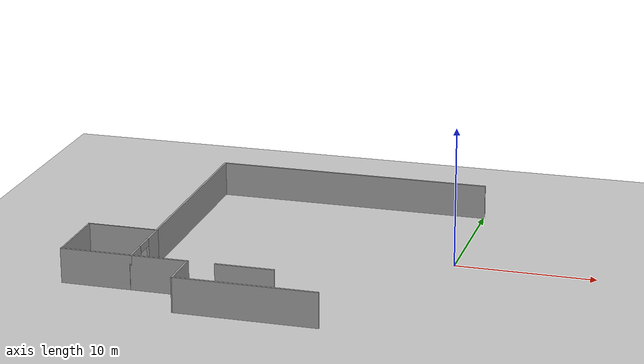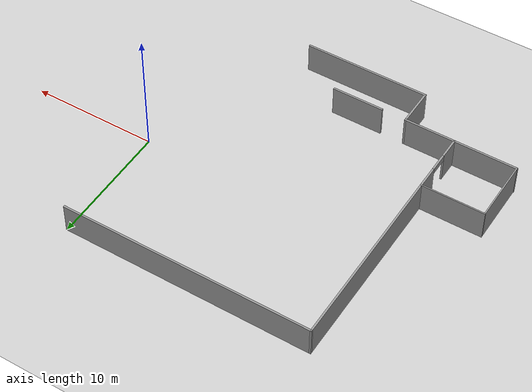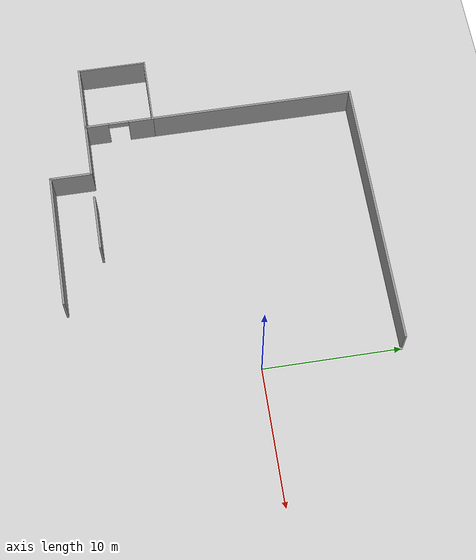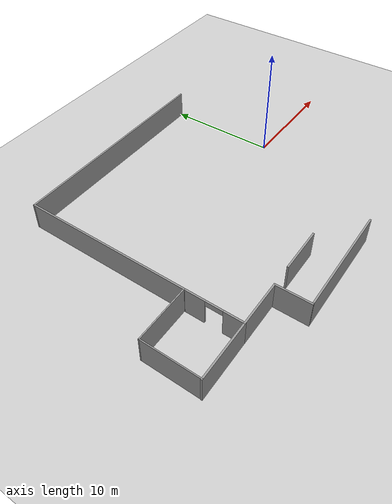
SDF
<sdf version="1.7">
 <world name="me5413_obstacle_world">
  <model name="ground_plane">
   <static>1</static>
   <link name="link">
    <collision name="collision">
     <geometry><plane><normal>0 0 1</normal><size>100 100</size></plane></geometry>
     <surface>
      <contact><collide_bitmask>65535</collide_bitmask></contact>
      <friction><ode><mu>100</mu><mu2>50</mu2></ode></friction>
     </surface>
    </collision>
    <visual name="visual">
     <cast_shadows>0</cast_shadows>
     <geometry><plane><normal>0 0 1</normal><size>100 100</size></plane></geometry>
     <material>
      <script><uri>file://media/materials/scripts/gazebo.material</uri><name>Gazebo/Grey</name></script>
     </material>
    </visual>
   </link>
  </model>
  <model name="smart_house_3_0">
   <link name="Wall_11">
    <pose>-20.0155 -3.51553 0 0 -0 3.14159</pose>
    <inertial>
     <inertia><ixx>1</ixx><ixy>0</ixy><ixz>0</ixz><iyy>1</iyy><iyz>0</iyz><izz>1</izz></inertia>
     <mass>1</mass>
    </inertial>
    <visual name="Wall_11_Visual">
     <pose>0 0 1.25 0 -0 0</pose>
     <geometry><box><size>5.1 0.1 2.5</size></box></geometry>
     <material>
      <script><uri>file://media/materials/scripts/gazebo.material</uri><name>Gazebo/Grey</name></script>
      <ambient>1 1 1 1</ambient>
      <shader type="pixel"/>
     </material>
     <meta><layer>0</layer></meta>
    </visual>
    <collision name="Wall_11_Collision">
     <pose>0 0 1.25 0 -0 0</pose>
     <geometry><box><size>5.1 0.1 2.5</size></box></geometry>
     <surface>
      <friction>
       <ode><mu>1</mu><mu2>1</mu2><fdir1>0 0 0</fdir1><slip1>0</slip1><slip2>0</slip2></ode>
       <torsional>
        <coefficient>1</coefficient>
        <patch_radius>0</patch_radius>
        <surface_radius>0</surface_radius>
        <use_patch_radius>1</use_patch_radius>
        <ode><slip>0</slip></ode>
       </torsional>
      </friction>
      <bounce><restitution_coefficient>0</restitution_coefficient><threshold>1e+06</threshold></bounce>
      <contact>
       <collide_without_contact>0</collide_without_contact>
       <collide_without_contact_bitmask>1</collide_without_contact_bitmask>
       <collide_bitmask>1</collide_bitmask>
       <ode>
        <soft_cfm>0</soft_cfm>
        <soft_erp>0.2</soft_erp>
        <kp>1e+13</kp>
        <kd>1</kd>
        <max_vel>0.01</max_vel>
        <min_depth>0</min_depth>
       </ode>
       <bullet>
        <split_impulse>1</split_impulse>
        <split_impulse_penetration_threshold>-0.01</split_impulse_penetration_threshold>
        <soft_cfm>0</soft_cfm>
        <soft_erp>0.2</soft_erp>
        <kp>1e+13</kp>
        <kd>1</kd>
       </bullet>
      </contact>
     </surface>
    </collision>
   </link>
   <link name="Wall_12">
    <pose>-22.5155 -6.01553 0 0 0 -1.5708</pose>
    <inertial>
     <inertia><ixx>1</ixx><ixy>0</ixy><ixz>0</ixz><iyy>1</iyy><iyz>0</iyz><izz>1</izz></inertia>
     <mass>1</mass>
    </inertial>
    <visual name="Wall_12_Visual">
     <pose>0 0 1.25 0 -0 0</pose>
     <geometry><box><size>5.1 0.1 2.5</size></box></geometry>
     <material>
      <script><uri>file://media/materials/scripts/gazebo.material</uri><name>Gazebo/Grey</name></script>
      <ambient>1 1 1 1</ambient>
      <shader type="pixel"/>
     </material>
     <meta><layer>0</layer></meta>
    </visual>
    <collision name="Wall_12_Collision">
     <pose>0 0 1.25 0 -0 0</pose>
     <geometry><box><size>5.1 0.1 2.5</size></box></geometry>
     <surface>
      <friction>
       <ode><mu>1</mu><mu2>1</mu2><fdir1>0 0 0</fdir1><slip1>0</slip1><slip2>0</slip2></ode>
       <torsional>
        <coefficient>1</coefficient>
        <patch_radius>0</patch_radius>
        <surface_radius>0</surface_radius>
        <use_patch_radius>1</use_patch_radius>
        <ode><slip>0</slip></ode>
       </torsional>
      </friction>
      <bounce><restitution_coefficient>0</restitution_coefficient><threshold>1e+06</threshold></bounce>
      <contact>
       <collide_without_contact>0</collide_without_contact>
       <collide_without_contact_bitmask>1</collide_without_contact_bitmask>
       <collide_bitmask>1</collide_bitmask>
       <ode>
        <soft_cfm>0</soft_cfm>
        <soft_erp>0.2</soft_erp>
        <kp>1e+13</kp>
        <kd>1</kd>
        <max_vel>0.01</max_vel>
        <min_depth>0</min_depth>
       </ode>
       <bullet>
        <split_impulse>1</split_impulse>
        <split_impulse_penetration_threshold>-0.01</split_impulse_penetration_threshold>
        <soft_cfm>0</soft_cfm>
        <soft_erp>0.2</soft_erp>
        <kp>1e+13</kp>
        <kd>1</kd>
       </bullet>
      </contact>
     </surface>
    </collision>
   </link>
   <link name="Wall_15">
    <pose>-7.51553 11.4845 0 0 -0 3.14159</pose>
    <inertial>
     <inertia><ixx>1</ixx><ixy>0</ixy><ixz>0</ixz><iyy>1</iyy><iyz>0</iyz><izz>1</izz></inertia>
     <mass>1</mass>
    </inertial>
    <visual name="Wall_15_Visual">
     <pose>0 0 1.25 0 -0 0</pose>
     <geometry><box><size>20.15 0.15 2.5</size></box></geometry>
     <material>
      <script><uri>file://media/materials/scripts/gazebo.material</uri><name>Gazebo/Grey</name></script>
      <ambient>1 1 1 1</ambient>
      <shader type="pixel"/>
     </material>
     <meta><layer>0</layer></meta>
    </visual>
    <collision name="Wall_15_Collision">
     <pose>0 0 1.25 0 -0 0</pose>
     <geometry><box><size>20.15 0.15 2.5</size></box></geometry>
     <surface>
      <friction>
       <ode><mu>1</mu><mu2>1</mu2><fdir1>0 0 0</fdir1><slip1>0</slip1><slip2>0</slip2></ode>
       <torsional>
        <coefficient>1</coefficient>
        <patch_radius>0</patch_radius>
        <surface_radius>0</surface_radius>
        <use_patch_radius>1</use_patch_radius>
        <ode><slip>0</slip></ode>
       </torsional>
      </friction>
      <bounce><restitution_coefficient>0</restitution_coefficient><threshold>1e+06</threshold></bounce>
      <contact>
       <collide_without_contact>0</collide_without_contact>
       <collide_without_contact_bitmask>1</collide_without_contact_bitmask>
       <collide_bitmask>1</collide_bitmask>
       <ode>
        <soft_cfm>0</soft_cfm>
        <soft_erp>0.2</soft_erp>
        <kp>1e+13</kp>
        <kd>1</kd>
        <max_vel>0.01</max_vel>
        <min_depth>0</min_depth>
       </ode>
       <bullet>
        <split_impulse>1</split_impulse>
        <split_impulse_penetration_threshold>-0.01</split_impulse_penetration_threshold>
        <soft_cfm>0</soft_cfm>
        <soft_erp>0.2</soft_erp>
        <kp>1e+13</kp>
        <kd>1</kd>
       </bullet>
      </contact>
     </surface>
    </collision>
   </link>
   <link name="Wall_16">
    <pose>-17.5155 3.98447 0 0 0 -1.5708</pose>
    <inertial>
     <inertia><ixx>1</ixx><ixy>0</ixy><ixz>0</ixz><iyy>1</iyy><iyz>0</iyz><izz>1</izz></inertia>
     <mass>1</mass>
    </inertial>
    <visual name="Wall_16_Visual">
     <pose>0 0 1.25 0 -0 0</pose>
     <geometry><box><size>15.1503 0.15 2.5</size></box></geometry>
     <material>
      <script><uri>file://media/materials/scripts/gazebo.material</uri><name>Gazebo/Grey</name></script>
      <ambient>1 1 1 1</ambient>
      <shader type="pixel"/>
     </material>
     <meta><layer>0</layer></meta>
    </visual>
    <collision name="Wall_16_Collision">
     <pose>0 0 1.25 0 -0 0</pose>
     <geometry><box><size>15.1503 0.15 2.5</size></box></geometry>
     <surface>
      <friction>
       <ode><mu>1</mu><mu2>1</mu2><fdir1>0 0 0</fdir1><slip1>0</slip1><slip2>0</slip2></ode>
       <torsional>
        <coefficient>1</coefficient>
        <patch_radius>0</patch_radius>
        <surface_radius>0</surface_radius>
        <use_patch_radius>1</use_patch_radius>
        <ode><slip>0</slip></ode>
       </torsional>
      </friction>
      <bounce><restitution_coefficient>0</restitution_coefficient><threshold>1e+06</threshold></bounce>
      <contact>
       <collide_without_contact>0</collide_without_contact>
       <collide_without_contact_bitmask>1</collide_without_contact_bitmask>
       <collide_bitmask>1</collide_bitmask>
       <ode>
        <soft_cfm>0</soft_cfm>
        <soft_erp>0.2</soft_erp>
        <kp>1e+13</kp>
        <kd>1</kd>
        <max_vel>0.01</max_vel>
        <min_depth>0</min_depth>
       </ode>
       <bullet>
        <split_impulse>1</split_impulse>
        <split_impulse_penetration_threshold>-0.01</split_impulse_penetration_threshold>
        <soft_cfm>0</soft_cfm>
        <soft_erp>0.2</soft_erp>
        <kp>1e+13</kp>
        <kd>1</kd>
       </bullet>
      </contact>
     </surface>
    </collision>
   </link>
   <link name="Wall_24">
    <pose>-17.5155 -6.01553 0 0 0 -1.5708</pose>
    <inertial>
     <inertia><ixx>1</ixx><ixy>0</ixy><ixz>0</ixz><iyy>1</iyy><iyz>0</iyz><izz>1</izz></inertia>
     <mass>1</mass>
    </inertial>
    <visual name="Wall_24_Visual_0">
     <pose>-1.63657 0 1.25 0 -0 0</pose>
     <geometry><box><size>1.87687 0.15 2.5</size></box></geometry>
     <material>
      <script><uri>file://media/materials/scripts/gazebo.material</uri><name>Gazebo/Grey</name></script>
      <ambient>1 1 1 1</ambient>
      <shader type="pixel"/>
     </material>
     <meta><layer>0</layer></meta>
    </visual>
    <visual name="Wall_24_Visual_1">
     <pose>1.68843 0 1.25 0 -0 0</pose>
     <geometry><box><size>1.77313 0.15 2.5</size></box></geometry>
     <material>
      <script><uri>file://media/materials/scripts/gazebo.material</uri><name>Gazebo/Grey</name></script>
      <ambient>1 1 1 1</ambient>
      <shader type="pixel"/>
     </material>
     <meta><layer>0</layer></meta>
    </visual>
    <visual name="Wall_24_Visual_2">
     <pose>0.051866 0 2.25 0 -0 0</pose>
     <geometry><box><size>1.5 0.15 0.5</size></box></geometry>
     <material>
      <script><uri>file://media/materials/scripts/gazebo.material</uri><name>Gazebo/Grey</name></script>
      <ambient>1 1 1 1</ambient>
      <shader type="pixel"/>
     </material>
     <meta><layer>0</layer></meta>
    </visual>
    <collision name="Wall_24_Collision_0">
     <pose>-1.63657 0 1.25 0 -0 0</pose>
     <geometry><box><size>1.87687 0.15 2.5</size></box></geometry>
     <surface>
      <friction>
       <ode><mu>1</mu><mu2>1</mu2><fdir1>0 0 0</fdir1><slip1>0</slip1><slip2>0</slip2></ode>
       <torsional>
        <coefficient>1</coefficient>
        <patch_radius>0</patch_radius>
        <surface_radius>0</surface_radius>
        <use_patch_radius>1</use_patch_radius>
        <ode><slip>0</slip></ode>
       </torsional>
      </friction>
      <bounce><restitution_coefficient>0</restitution_coefficient><threshold>1e+06</threshold></bounce>
      <contact>
       <collide_without_contact>0</collide_without_contact>
       <collide_without_contact_bitmask>1</collide_without_contact_bitmask>
       <collide_bitmask>1</collide_bitmask>
       <ode>
        <soft_cfm>0</soft_cfm>
        <soft_erp>0.2</soft_erp>
        <kp>1e+13</kp>
        <kd>1</kd>
        <max_vel>0.01</max_vel>
        <min_depth>0</min_depth>
       </ode>
       <bullet>
        <split_impulse>1</split_impulse>
        <split_impulse_penetration_threshold>-0.01</split_impulse_penetration_threshold>
        <soft_cfm>0</soft_cfm>
        <soft_erp>0.2</soft_erp>
        <kp>1e+13</kp>
        <kd>1</kd>
       </bullet>
      </contact>
     </surface>
    </collision>
    <collision name="Wall_24_Collision_2">
     <pose>0.051866 0 2.25 0 -0 0</pose>
     <geometry><box><size>1.5 0.15 0.5</size></box></geometry>
     <surface>
      <friction>
       <ode><mu>1</mu><mu2>1</mu2><fdir1>0 0 0</fdir1><slip1>0</slip1><slip2>0</slip2></ode>
       <torsional>
        <coefficient>1</coefficient>
        <patch_radius>0</patch_radius>
        <surface_radius>0</surface_radius>
        <use_patch_radius>1</use_patch_radius>
        <ode><slip>0</slip></ode>
       </torsional>
      </friction>
      <bounce><restitution_coefficient>0</restitution_coefficient><threshold>1e+06</threshold></bounce>
      <contact>
       <collide_without_contact>0</collide_without_contact>
       <collide_without_contact_bitmask>1</collide_without_contact_bitmask>
       <collide_bitmask>1</collide_bitmask>
       <ode>
        <soft_cfm>0</soft_cfm>
        <soft_erp>0.2</soft_erp>
        <kp>1e+13</kp>
        <kd>1</kd>
        <max_vel>0.01</max_vel>
        <min_depth>0</min_depth>
       </ode>
       <bullet>
        <split_impulse>1</split_impulse>
        <split_impulse_penetration_threshold>-0.01</split_impulse_penetration_threshold>
        <soft_cfm>0</soft_cfm>
        <soft_erp>0.2</soft_erp>
        <kp>1e+13</kp>
        <kd>1</kd>
       </bullet>
      </contact>
     </surface>
    </collision>
    <collision name="Wall_24_Collision_1">
     <pose>1.68843 0 1.25 0 -0 0</pose>
     <geometry><box><size>1.77313 0.15 2.5</size></box></geometry>
     <surface>
      <friction>
       <ode><mu>1</mu><mu2>1</mu2><fdir1>0 0 0</fdir1><slip1>0</slip1><slip2>0</slip2></ode>
       <torsional>
        <coefficient>1</coefficient>
        <patch_radius>0</patch_radius>
        <surface_radius>0</surface_radius>
        <use_patch_radius>1</use_patch_radius>
        <ode><slip>0</slip></ode>
       </torsional>
      </friction>
      <bounce><restitution_coefficient>0</restitution_coefficient><threshold>1e+06</threshold></bounce>
      <contact>
       <collide_without_contact>0</collide_without_contact>
       <collide_without_contact_bitmask>1</collide_without_contact_bitmask>
       <collide_bitmask>1</collide_bitmask>
       <ode>
        <soft_cfm>0</soft_cfm>
        <soft_erp>0.2</soft_erp>
        <kp>1e+13</kp>
        <kd>1</kd>
        <max_vel>0.01</max_vel>
        <min_depth>0</min_depth>
       </ode>
       <bullet>
        <split_impulse>1</split_impulse>
        <split_impulse_penetration_threshold>-0.01</split_impulse_penetration_threshold>
        <soft_cfm>0</soft_cfm>
        <soft_erp>0.2</soft_erp>
        <kp>1e+13</kp>
        <kd>1</kd>
       </bullet>
      </contact>
     </surface>
    </collision>
   </link>
   <link name="Wall_40">
    <pose>-20.0155 -8.51553 0 0 -0 0</pose>
    <inertial>
     <inertia><ixx>1</ixx><ixy>0</ixy><ixz>0</ixz><iyy>1</iyy><iyz>0</iyz><izz>1</izz></inertia>
     <mass>1</mass>
    </inertial>
    <visual name="Wall_40_Visual">
     <pose>0 0 1.25 0 -0 0</pose>
     <geometry><box><size>5.15 0.15 2.5</size></box></geometry>
     <material>
      <script><uri>file://media/materials/scripts/gazebo.material</uri><name>Gazebo/Grey</name></script>
      <ambient>1 1 1 1</ambient>
      <shader type="pixel"/>
     </material>
     <meta><layer>0</layer></meta>
    </visual>
    <collision name="Wall_40_Collision">
     <pose>0 0 1.25 0 -0 0</pose>
     <geometry><box><size>5.15 0.15 2.5</size></box></geometry>
     <surface>
      <friction>
       <ode><mu>1</mu><mu2>1</mu2><fdir1>0 0 0</fdir1><slip1>0</slip1><slip2>0</slip2></ode>
       <torsional>
        <coefficient>1</coefficient>
        <patch_radius>0</patch_radius>
        <surface_radius>0</surface_radius>
        <use_patch_radius>1</use_patch_radius>
        <ode><slip>0</slip></ode>
       </torsional>
      </friction>
      <bounce><restitution_coefficient>0</restitution_coefficient><threshold>1e+06</threshold></bounce>
      <contact>
       <collide_without_contact>0</collide_without_contact>
       <collide_without_contact_bitmask>1</collide_without_contact_bitmask>
       <collide_bitmask>1</collide_bitmask>
       <ode>
        <soft_cfm>0</soft_cfm>
        <soft_erp>0.2</soft_erp>
        <kp>1e+13</kp>
        <kd>1</kd>
        <max_vel>0.01</max_vel>
        <min_depth>0</min_depth>
       </ode>
       <bullet>
        <split_impulse>1</split_impulse>
        <split_impulse_penetration_threshold>-0.01</split_impulse_penetration_threshold>
        <soft_cfm>0</soft_cfm>
        <soft_erp>0.2</soft_erp>
        <kp>1e+13</kp>
        <kd>1</kd>
       </bullet>
      </contact>
     </surface>
    </collision>
   </link>
   <link name="Wall_44">
    <pose>-15.5155 -8.51553 0 0 -0 0</pose>
    <inertial>
     <inertia><ixx>1</ixx><ixy>0</ixy><ixz>0</ixz><iyy>1</iyy><iyz>0</iyz><izz>1</izz></inertia>
     <mass>1</mass>
    </inertial>
    <visual name="Wall_44_Visual">
     <pose>0 0 1.25 0 -0 0</pose>
     <geometry><box><size>4.15 0.15 2.5</size></box></geometry>
     <material>
      <script><uri>file://media/materials/scripts/gazebo.material</uri><name>Gazebo/Grey</name></script>
      <ambient>1 1 1 1</ambient>
      <shader type="pixel"/>
     </material>
     <meta><layer>0</layer></meta>
    </visual>
    <collision name="Wall_44_Collision">
     <pose>0 0 1.25 0 -0 0</pose>
     <geometry><box><size>4.15 0.15 2.5</size></box></geometry>
     <surface>
      <friction>
       <ode><mu>1</mu><mu2>1</mu2><fdir1>0 0 0</fdir1><slip1>0</slip1><slip2>0</slip2></ode>
       <torsional>
        <coefficient>1</coefficient>
        <patch_radius>0</patch_radius>
        <surface_radius>0</surface_radius>
        <use_patch_radius>1</use_patch_radius>
        <ode><slip>0</slip></ode>
       </torsional>
      </friction>
      <bounce><restitution_coefficient>0</restitution_coefficient><threshold>1e+06</threshold></bounce>
      <contact>
       <collide_without_contact>0</collide_without_contact>
       <collide_without_contact_bitmask>1</collide_without_contact_bitmask>
       <collide_bitmask>1</collide_bitmask>
       <ode>
        <soft_cfm>0</soft_cfm>
        <soft_erp>0.2</soft_erp>
        <kp>1e+13</kp>
        <kd>1</kd>
        <max_vel>0.01</max_vel>
        <min_depth>0</min_depth>
       </ode>
       <bullet>
        <split_impulse>1</split_impulse>
        <split_impulse_penetration_threshold>-0.01</split_impulse_penetration_threshold>
        <soft_cfm>0</soft_cfm>
        <soft_erp>0.2</soft_erp>
        <kp>1e+13</kp>
        <kd>1</kd>
       </bullet>
      </contact>
     </surface>
    </collision>
   </link>
   <link name="Wall_46">
    <pose>-9.51553 -8.51553 0 0 -0 3.14159</pose>
    <inertial>
     <inertia><ixx>1</ixx><ixy>0</ixy><ixz>0</ixz><iyy>1</iyy><iyz>0</iyz><izz>1</izz></inertia>
     <mass>1</mass>
    </inertial>
    <visual name="Wall_46_Visual">
     <pose>0 0 1.25 0 -0 0</pose>
     <geometry><box><size>4.15 0.15 2.5</size></box></geometry>
     <material>
      <script><uri>file://media/materials/scripts/gazebo.material</uri><name>Gazebo/Grey</name></script>
      <ambient>1 1 1 1</ambient>
      <shader type="pixel"/>
     </material>
     <meta><layer>0</layer></meta>
    </visual>
    <collision name="Wall_46_Collision">
     <pose>0 0 1.25 0 -0 0</pose>
     <geometry><box><size>4.15 0.15 2.5</size></box></geometry>
     <surface>
      <friction>
       <ode><mu>1</mu><mu2>1</mu2><fdir1>0 0 0</fdir1><slip1>0</slip1><slip2>0</slip2></ode>
       <torsional>
        <coefficient>1</coefficient>
        <patch_radius>0</patch_radius>
        <surface_radius>0</surface_radius>
        <use_patch_radius>1</use_patch_radius>
        <ode><slip>0</slip></ode>
       </torsional>
      </friction>
      <bounce><restitution_coefficient>0</restitution_coefficient><threshold>1e+06</threshold></bounce>
      <contact>
       <collide_without_contact>0</collide_without_contact>
       <collide_without_contact_bitmask>1</collide_without_contact_bitmask>
       <collide_bitmask>1</collide_bitmask>
       <ode>
        <soft_cfm>0</soft_cfm>
        <soft_erp>0.2</soft_erp>
        <kp>1e+13</kp>
        <kd>1</kd>
        <max_vel>0.01</max_vel>
        <min_depth>0</min_depth>
       </ode>
       <bullet>
        <split_impulse>1</split_impulse>
        <split_impulse_penetration_threshold>-0.01</split_impulse_penetration_threshold>
        <soft_cfm>0</soft_cfm>
        <soft_erp>0.2</soft_erp>
        <kp>1e+13</kp>
        <kd>1</kd>
       </bullet>
      </contact>
     </surface>
    </collision>
   </link>
   <link name="Wall_54">
    <pose>-13.5155 -10.0155 0 0 0 -1.5708</pose>
    <inertial>
     <inertia><ixx>1</ixx><ixy>0</ixy><ixz>0</ixz><iyy>1</iyy><iyz>0</iyz><izz>1</izz></inertia>
     <mass>1</mass>
    </inertial>
    <visual name="Wall_54_Visual">
     <pose>0 0 1.25 0 -0 0</pose>
     <geometry><box><size>3.15 0.15 2.5</size></box></geometry>
     <material>
      <script><uri>file://media/materials/scripts/gazebo.material</uri><name>Gazebo/Grey</name></script>
      <ambient>1 1 1 1</ambient>
      <shader type="pixel"/>
     </material>
     <meta><layer>0</layer></meta>
    </visual>
    <collision name="Wall_54_Collision">
     <pose>0 0 1.25 0 -0 0</pose>
     <geometry><box><size>3.15 0.15 2.5</size></box></geometry>
     <surface>
      <friction>
       <ode><mu>1</mu><mu2>1</mu2><fdir1>0 0 0</fdir1><slip1>0</slip1><slip2>0</slip2></ode>
       <torsional>
        <coefficient>1</coefficient>
        <patch_radius>0</patch_radius>
        <surface_radius>0</surface_radius>
        <use_patch_radius>1</use_patch_radius>
        <ode><slip>0</slip></ode>
       </torsional>
      </friction>
      <bounce><restitution_coefficient>0</restitution_coefficient><threshold>1e+06</threshold></bounce>
      <contact>
       <collide_without_contact>0</collide_without_contact>
       <collide_without_contact_bitmask>1</collide_without_contact_bitmask>
       <collide_bitmask>1</collide_bitmask>
       <ode>
        <soft_cfm>0</soft_cfm>
        <soft_erp>0.2</soft_erp>
        <kp>1e+13</kp>
        <kd>1</kd>
        <max_vel>0.01</max_vel>
        <min_depth>0</min_depth>
       </ode>
       <bullet>
        <split_impulse>1</split_impulse>
        <split_impulse_penetration_threshold>-0.01</split_impulse_penetration_threshold>
        <soft_cfm>0</soft_cfm>
        <soft_erp>0.2</soft_erp>
        <kp>1e+13</kp>
        <kd>1</kd>
       </bullet>
      </contact>
     </surface>
    </collision>
   </link>
   <link name="Wall_55">
    <pose>-8.5155 -11.5155 0 0 -0 0</pose>
    <inertial>
     <mass>1</mass>
     <inertia><ixx>1</ixx><ixy>0</ixy><ixz>0</ixz><iyy>1</iyy><iyz>0</iyz><izz>1</izz></inertia>
    </inertial>
    <visual name="Wall_55_Visual">
     <pose>0 0 1.25 0 -0 0</pose>
     <geometry><box><size>10 0.15 2.5</size></box></geometry>
     <material>
      <script><uri>file://media/materials/scripts/gazebo.material</uri><name>Gazebo/Grey</name></script>
      <ambient>1 1 1 1</ambient>
      <shader type="pixel"><normal_map>__default__</normal_map></shader>
      <diffuse>0.7 0.7 0.7 1</diffuse>
      <specular>0.01 0.01 0.01 1</specular>
      <emissive>0 0 0 1</emissive>
     </material>
     <meta><layer>0</layer></meta>
    </visual>
    <collision name="Wall_55_Collision">
     <pose>0 0 1.25 0 -0 0</pose>
     <geometry><box><size>10 0.15 2.5</size></box></geometry>
     <surface>
      <friction>
       <ode><mu>1</mu><mu2>1</mu2><fdir1>0 0 0</fdir1><slip1>0</slip1><slip2>0</slip2></ode>
       <torsional>
        <coefficient>1</coefficient>
        <patch_radius>0</patch_radius>
        <surface_radius>0</surface_radius>
        <use_patch_radius>1</use_patch_radius>
        <ode><slip>0</slip></ode>
       </torsional>
      </friction>
      <bounce><restitution_coefficient>0</restitution_coefficient><threshold>1e+06</threshold></bounce>
      <contact>
       <collide_without_contact>0</collide_without_contact>
       <collide_without_contact_bitmask>1</collide_without_contact_bitmask>
       <collide_bitmask>1</collide_bitmask>
       <ode>
        <soft_cfm>0</soft_cfm>
        <soft_erp>0.2</soft_erp>
        <kp>1e+13</kp>
        <kd>1</kd>
        <max_vel>0.01</max_vel>
        <min_depth>0</min_depth>
       </ode>
       <bullet>
        <split_impulse>1</split_impulse>
        <split_impulse_penetration_threshold>-0.01</split_impulse_penetration_threshold>
        <soft_cfm>0</soft_cfm>
        <soft_erp>0.2</soft_erp>
        <kp>1e+13</kp>
        <kd>1</kd>
       </bullet>
      </contact>
     </surface>
    </collision>
   </link>
   <static>1</static>
   <pose>-2.5 -1.5 0 0 -0 0</pose>
  </model>
 </world>
</sdf>
